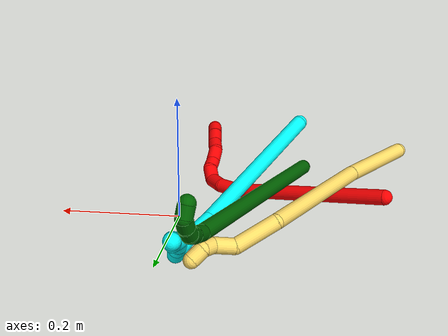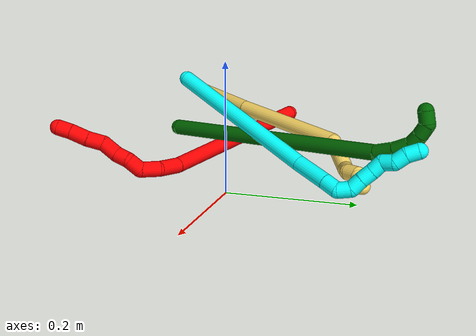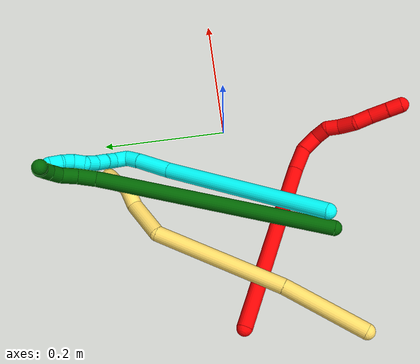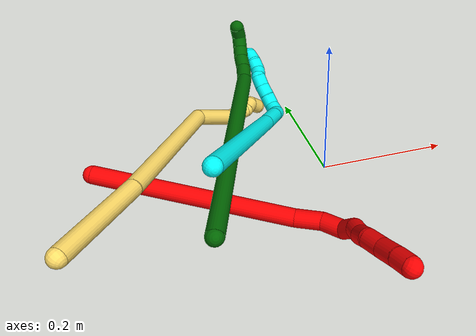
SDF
<sdf version="1.7">
 <world name="default">
  <model name="photoneo_s_sensor">
   <static>1</static>
   <pose>0 0 2 1.57079 1.57079 3.14159</pose>
   <link name="link">
    <inertial><mass>0.1</mass></inertial>
    <sensor name="sensor" type="depth">
     <update_rate>30</update_rate>
     <camera>
      <horizontal_fov>1.22</horizontal_fov>
      <image><width>1920</width><height>1200</height><format>B8G8R8</format></image>
      <clip><near>0.1</near><far>4</far></clip>
      <depth_camera><output>points</output></depth_camera>
     </camera>
     <plugin name="camera_plugin" filename="libgazebo_ros_depth_camera.so">
      <baseline>0.2</baseline>
      <alwaysOn>1</alwaysOn>
      <updateRate>0.0</updateRate>
      <cameraName>camera_ir</cameraName>
      <imageTopicName>/camera/color/image_raw</imageTopicName>
      <cameraInfoTopicName>/camera/color/camera_info</cameraInfoTopicName>
      <depthImageTopicName>/camera/depth/image_raw</depthImageTopicName>
      <depthImageCameraInfoTopicName>/camera/depth/camera_info</depthImageCameraInfoTopicName>
      <pointCloudTopicName>/camera/depth/points</pointCloudTopicName>
      <frameName>fr_optical</frameName>
      <pointCloudCutoff>0.1</pointCloudCutoff>
      <pointCloudCutoffMax>2.0</pointCloudCutoffMax>
      <distortionK1>0</distortionK1>
      <distortionK2>0</distortionK2>
      <distortionK3>0</distortionK3>
      <distortionT1>0</distortionT1>
      <distortionT2>0</distortionT2>
      <CxPrime>0</CxPrime>
      <Cx>0</Cx>
      <Cy>0</Cy>
      <focalLength>0</focalLength>
      <hackBaseline>0</hackBaseline>
     </plugin>
    </sensor>
   </link>
  </model>
  <model name="bin">
   <static>1</static>
   <link name="bottom">
    <collision name="collision-bottom">
     <pose>0 0 -0.01 0 -0 0</pose>
     <geometry><box><size>0.8 0.6 0.02</size></box></geometry>
     <surface>
      <friction><ode><mu>100</mu><mu2>100</mu2></ode></friction>
      <contact><collide_bitmask>65535</collide_bitmask></contact>
     </surface>
    </collision>
   </link>
   <link name="west_wall">
    <collision name="collision-west_wall">
     <pose>-0.41 0 0.1 0 -0 0</pose>
     <geometry><box><size>0.02 0.6 0.2</size></box></geometry>
     <surface>
      <friction><ode><mu>100</mu><mu2>100</mu2></ode></friction>
      <contact><collide_bitmask>65535</collide_bitmask></contact>
     </surface>
    </collision>
   </link>
   <link name="east_wall">
    <collision name="collision-east_wall">
     <pose>0.41 0 0.1 0 -0 0</pose>
     <geometry><box><size>0.02 0.6 0.2</size></box></geometry>
     <surface>
      <friction><ode><mu>100</mu><mu2>100</mu2></ode></friction>
      <contact><collide_bitmask>65535</collide_bitmask></contact>
     </surface>
    </collision>
   </link>
   <link name="south_wall">
    <collision name="collision-south_wall">
     <pose>0 -0.31 0.1 0 -0 0</pose>
     <geometry><box><size>0.8 0.02 0.2</size></box></geometry>
     <surface>
      <friction><ode><mu>100</mu><mu2>100</mu2></ode></friction>
      <contact><collide_bitmask>65535</collide_bitmask></contact>
     </surface>
    </collision>
   </link>
   <link name="north_wall">
    <collision name="collision-north_wall">
     <pose>0 0.31 0.1 0 -0 0</pose>
     <geometry><box><size>0.8 0.02 0.2</size></box></geometry>
     <surface>
      <friction><ode><mu>100</mu><mu2>100</mu2></ode></friction>
      <contact><collide_bitmask>65535</collide_bitmask></contact>
     </surface>
    </collision>
   </link>
  </model>
  <model name="2">
   <static>0</static>
   <link name="2">
    <collision name="collision-cylinder-e_1_1_4">
     <pose>0.037554 0.015673 -0.133207 -3.02447 0.272998 -2.33475</pose>
     <geometry><cylinder><radius>0.0125</radius><length>0.278568</length></cylinder></geometry>
     <surface>
      <friction><ode><mu>1.16</mu><mu2>1.16</mu2><slip1>0</slip1><slip2>0</slip2></ode></friction>
      <contact><ode><kp>1e+06</kp><kd>1</kd><max_vel>0</max_vel><min_depth>0.001</min_depth></ode></contact>
     </surface>
    </collision>
    <visual name="visual-cylinder-e_1_1_4">
     <pose>0.037554 0.015673 -0.133207 -3.02447 0.272998 -2.33475</pose>
     <geometry><cylinder><radius>0.0125</radius><length>0.278568</length></cylinder></geometry>
     <material><ambient>1 0 0 1</ambient></material>
    </visual>
    <collision name="collision-cylinder-e_2_4_5">
     <pose>0.083387 0.032189 -0.283261 -3.09157 0.45632 -2.92694</pose>
     <geometry><cylinder><radius>0.0125</radius><length>0.03758</length></cylinder></geometry>
     <surface>
      <friction><ode><mu>1.16</mu><mu2>1.16</mu2><slip1>0</slip1><slip2>0</slip2></ode></friction>
      <contact><ode><kp>1e+06</kp><kd>1</kd><max_vel>0</max_vel><min_depth>0.001</min_depth></ode></contact>
     </surface>
    </collision>
    <visual name="visual-cylinder-e_2_4_5">
     <pose>0.083387 0.032189 -0.283261 -3.09157 0.45632 -2.92694</pose>
     <geometry><cylinder><radius>0.0125</radius><length>0.03758</length></cylinder></geometry>
     <material><ambient>1 0 0 1</ambient></material>
    </visual>
    <collision name="collision-cylinder-e_3_5_6">
     <pose>0.098514 0.027727 -0.313196 2.7565 0.451449 1.73377</pose>
     <geometry><cylinder><radius>0.0125</radius><length>0.031391</length></cylinder></geometry>
     <surface>
      <friction><ode><mu>1.16</mu><mu2>1.16</mu2><slip1>0</slip1><slip2>0</slip2></ode></friction>
      <contact><ode><kp>1e+06</kp><kd>1</kd><max_vel>0</max_vel><min_depth>0.001</min_depth></ode></contact>
     </surface>
    </collision>
    <visual name="visual-cylinder-e_3_5_6">
     <pose>0.098514 0.027727 -0.313196 2.7565 0.451449 1.73377</pose>
     <geometry><cylinder><radius>0.0125</radius><length>0.031391</length></cylinder></geometry>
     <material><ambient>1 0 0 1</ambient></material>
    </visual>
    <collision name="collision-cylinder-e_4_6_7">
     <pose>0.115811 0.016977 -0.329766 2.13969 1.01684 1.58844</pose>
     <geometry><cylinder><radius>0.0125</radius><length>0.024573</length></cylinder></geometry>
     <surface>
      <friction><ode><mu>1.16</mu><mu2>1.16</mu2><slip1>0</slip1><slip2>0</slip2></ode></friction>
      <contact><ode><kp>1e+06</kp><kd>1</kd><max_vel>0</max_vel><min_depth>0.001</min_depth></ode></contact>
     </surface>
    </collision>
    <visual name="visual-cylinder-e_4_6_7">
     <pose>0.115811 0.016977 -0.329766 2.13969 1.01684 1.58844</pose>
     <geometry><cylinder><radius>0.0125</radius><length>0.024573</length></cylinder></geometry>
     <material><ambient>1 0 0 1</ambient></material>
    </visual>
    <collision name="collision-cylinder-e_5_7_8">
     <pose>0.131283 0.00254 -0.335876 1.85521 0.492217 0.646768</pose>
     <geometry><cylinder><radius>0.0125</radius><length>0.021259</length></cylinder></geometry>
     <surface>
      <friction><ode><mu>1.16</mu><mu2>1.16</mu2><slip1>0</slip1><slip2>0</slip2></ode></friction>
      <contact><ode><kp>1e+06</kp><kd>1</kd><max_vel>0</max_vel><min_depth>0.001</min_depth></ode></contact>
     </surface>
    </collision>
    <visual name="visual-cylinder-e_5_7_8">
     <pose>0.131283 0.00254 -0.335876 1.85521 0.492217 0.646768</pose>
     <geometry><cylinder><radius>0.0125</radius><length>0.021259</length></cylinder></geometry>
     <material><ambient>1 0 0 1</ambient></material>
    </visual>
    <collision name="collision-cylinder-e_6_8_9">
     <pose>0.145633 -0.016846 -0.340169 1.72958 0.724985 0.83706</pose>
     <geometry><cylinder><radius>0.0125</radius><length>0.028128</length></cylinder></geometry>
     <surface>
      <friction><ode><mu>1.16</mu><mu2>1.16</mu2><slip1>0</slip1><slip2>0</slip2></ode></friction>
      <contact><ode><kp>1e+06</kp><kd>1</kd><max_vel>0</max_vel><min_depth>0.001</min_depth></ode></contact>
     </surface>
    </collision>
    <visual name="visual-cylinder-e_6_8_9">
     <pose>0.145633 -0.016846 -0.340169 1.72958 0.724985 0.83706</pose>
     <geometry><cylinder><radius>0.0125</radius><length>0.028128</length></cylinder></geometry>
     <material><ambient>1 0 0 1</ambient></material>
    </visual>
    <collision name="collision-cylinder-e_7_9_10">
     <pose>0.161746 -0.036376 -0.348714 2.21635 0.535578 1.00595</pose>
     <geometry><cylinder><radius>0.0125</radius><length>0.026597</length></cylinder></geometry>
     <surface>
      <friction><ode><mu>1.16</mu><mu2>1.16</mu2><slip1>0</slip1><slip2>0</slip2></ode></friction>
      <contact><ode><kp>1e+06</kp><kd>1</kd><max_vel>0</max_vel><min_depth>0.001</min_depth></ode></contact>
     </surface>
    </collision>
    <visual name="visual-cylinder-e_7_9_10">
     <pose>0.161746 -0.036376 -0.348714 2.21635 0.535578 1.00595</pose>
     <geometry><cylinder><radius>0.0125</radius><length>0.026597</length></cylinder></geometry>
     <material><ambient>1 0 0 1</ambient></material>
    </visual>
    <collision name="collision-cylinder-e_8_10_11">
     <pose>0.176954 -0.055947 -0.361195 2.06333 0.618129 0.980512</pose>
     <geometry><cylinder><radius>0.0125</radius><length>0.029066</length></cylinder></geometry>
     <surface>
      <friction><ode><mu>1.16</mu><mu2>1.16</mu2><slip1>0</slip1><slip2>0</slip2></ode></friction>
      <contact><ode><kp>1e+06</kp><kd>1</kd><max_vel>0</max_vel><min_depth>0.001</min_depth></ode></contact>
     </surface>
    </collision>
    <visual name="visual-cylinder-e_8_10_11">
     <pose>0.176954 -0.055947 -0.361195 2.06333 0.618129 0.980512</pose>
     <geometry><cylinder><radius>0.0125</radius><length>0.029066</length></cylinder></geometry>
     <material><ambient>1 0 0 1</ambient></material>
    </visual>
    <collision name="collision-cylinder-e_9_11_2">
     <pose>0.191239 -0.074646 -0.372064 2.13838 0.539167 0.933456</pose>
     <geometry><cylinder><radius>0.0125</radius><length>0.022838</length></cylinder></geometry>
     <surface>
      <friction><ode><mu>1.16</mu><mu2>1.16</mu2><slip1>0</slip1><slip2>0</slip2></ode></friction>
      <contact><ode><kp>1e+06</kp><kd>1</kd><max_vel>0</max_vel><min_depth>0.001</min_depth></ode></contact>
     </surface>
    </collision>
    <visual name="visual-cylinder-e_9_11_2">
     <pose>0.191239 -0.074646 -0.372064 2.13838 0.539167 0.933456</pose>
     <geometry><cylinder><radius>0.0125</radius><length>0.022838</length></cylinder></geometry>
     <material><ambient>1 0 0 1</ambient></material>
    </visual>
    <collision name="collision-sphere-2">
     <pose>0.197102 -0.082908 -0.377332 0 -0 0</pose>
     <geometry><sphere><radius>0.0125</radius></sphere></geometry>
     <surface>
      <friction><ode><mu>1.16</mu><mu2>1.16</mu2><slip1>0</slip1><slip2>0</slip2></ode></friction>
      <contact><ode><kp>1e+06</kp><kd>1</kd><max_vel>0</max_vel><min_depth>0.001</min_depth></ode></contact>
     </surface>
    </collision>
    <visual name="visual-sphere-2">
     <pose>0.197102 -0.082908 -0.377332 0 -0 0</pose>
     <geometry><sphere><radius>0.0125</radius></sphere></geometry>
     <material><ambient>1 0 0 1</ambient></material>
    </visual>
    <collision name="collision-sphere-11">
     <pose>0.185376 -0.066383 -0.366796 0 -0 0</pose>
     <geometry><sphere><radius>0.0125</radius></sphere></geometry>
     <surface>
      <friction><ode><mu>1.16</mu><mu2>1.16</mu2><slip1>0</slip1><slip2>0</slip2></ode></friction>
      <contact><ode><kp>1e+06</kp><kd>1</kd><max_vel>0</max_vel><min_depth>0.001</min_depth></ode></contact>
     </surface>
    </collision>
    <visual name="visual-sphere-11">
     <pose>0.185376 -0.066383 -0.366796 0 -0 0</pose>
     <geometry><sphere><radius>0.0125</radius></sphere></geometry>
     <material><ambient>1 0 0 1</ambient></material>
    </visual>
    <collision name="collision-sphere-10">
     <pose>0.168532 -0.045511 -0.355595 0 -0 0</pose>
     <geometry><sphere><radius>0.0125</radius></sphere></geometry>
     <surface>
      <friction><ode><mu>1.16</mu><mu2>1.16</mu2><slip1>0</slip1><slip2>0</slip2></ode></friction>
      <contact><ode><kp>1e+06</kp><kd>1</kd><max_vel>0</max_vel><min_depth>0.001</min_depth></ode></contact>
     </surface>
    </collision>
    <visual name="visual-sphere-10">
     <pose>0.168532 -0.045511 -0.355595 0 -0 0</pose>
     <geometry><sphere><radius>0.0125</radius></sphere></geometry>
     <material><ambient>1 0 0 1</ambient></material>
    </visual>
    <collision name="collision-sphere-9">
     <pose>0.154959 -0.027241 -0.341834 0 -0 0</pose>
     <geometry><sphere><radius>0.0125</radius></sphere></geometry>
     <surface>
      <friction><ode><mu>1.16</mu><mu2>1.16</mu2><slip1>0</slip1><slip2>0</slip2></ode></friction>
      <contact><ode><kp>1e+06</kp><kd>1</kd><max_vel>0</max_vel><min_depth>0.001</min_depth></ode></contact>
     </surface>
    </collision>
    <visual name="visual-sphere-9">
     <pose>0.154959 -0.027241 -0.341834 0 -0 0</pose>
     <geometry><sphere><radius>0.0125</radius></sphere></geometry>
     <material><ambient>1 0 0 1</ambient></material>
    </visual>
    <collision name="collision-sphere-4">
     <pose>0.075107 0.031346 -0.266414 0 -0 0</pose>
     <geometry><sphere><radius>0.0125</radius></sphere></geometry>
     <surface>
      <friction><ode><mu>1.16</mu><mu2>1.16</mu2><slip1>0</slip1><slip2>0</slip2></ode></friction>
      <contact><ode><kp>1e+06</kp><kd>1</kd><max_vel>0</max_vel><min_depth>0.001</min_depth></ode></contact>
     </surface>
    </collision>
    <visual name="visual-sphere-4">
     <pose>0.075107 0.031346 -0.266414 0 -0 0</pose>
     <geometry><sphere><radius>0.0125</radius></sphere></geometry>
     <material><ambient>1 0 0 1</ambient></material>
    </visual>
    <collision name="collision-sphere-1">
     <geometry><sphere><radius>0.0125</radius></sphere></geometry>
     <surface>
      <friction><ode><mu>1.16</mu><mu2>1.16</mu2><slip1>0</slip1><slip2>0</slip2></ode></friction>
      <contact><ode><kp>1e+06</kp><kd>1</kd><max_vel>0</max_vel><min_depth>0.001</min_depth></ode></contact>
     </surface>
    </collision>
    <visual name="visual-sphere-1">
     <geometry><sphere><radius>0.0125</radius></sphere></geometry>
     <material><ambient>1 0 0 1</ambient></material>
    </visual>
    <collision name="collision-sphere-8">
     <pose>0.136306 -0.006452 -0.338505 0 -0 0</pose>
     <geometry><sphere><radius>0.0125</radius></sphere></geometry>
     <surface>
      <friction><ode><mu>1.16</mu><mu2>1.16</mu2><slip1>0</slip1><slip2>0</slip2></ode></friction>
      <contact><ode><kp>1e+06</kp><kd>1</kd><max_vel>0</max_vel><min_depth>0.001</min_depth></ode></contact>
     </surface>
    </collision>
    <visual name="visual-sphere-8">
     <pose>0.136306 -0.006452 -0.338505 0 -0 0</pose>
     <geometry><sphere><radius>0.0125</radius></sphere></geometry>
     <material><ambient>1 0 0 1</ambient></material>
    </visual>
    <collision name="collision-sphere-5">
     <pose>0.091667 0.033032 -0.300107 0 -0 0</pose>
     <geometry><sphere><radius>0.0125</radius></sphere></geometry>
     <surface>
      <friction><ode><mu>1.16</mu><mu2>1.16</mu2><slip1>0</slip1><slip2>0</slip2></ode></friction>
      <contact><ode><kp>1e+06</kp><kd>1</kd><max_vel>0</max_vel><min_depth>0.001</min_depth></ode></contact>
     </surface>
    </collision>
    <visual name="visual-sphere-5">
     <pose>0.091667 0.033032 -0.300107 0 -0 0</pose>
     <geometry><sphere><radius>0.0125</radius></sphere></geometry>
     <material><ambient>1 0 0 1</ambient></material>
    </visual>
    <collision name="collision-sphere-6">
     <pose>0.105362 0.022422 -0.326284 0 -0 0</pose>
     <geometry><sphere><radius>0.0125</radius></sphere></geometry>
     <surface>
      <friction><ode><mu>1.16</mu><mu2>1.16</mu2><slip1>0</slip1><slip2>0</slip2></ode></friction>
      <contact><ode><kp>1e+06</kp><kd>1</kd><max_vel>0</max_vel><min_depth>0.001</min_depth></ode></contact>
     </surface>
    </collision>
    <visual name="visual-sphere-6">
     <pose>0.105362 0.022422 -0.326284 0 -0 0</pose>
     <geometry><sphere><radius>0.0125</radius></sphere></geometry>
     <material><ambient>1 0 0 1</ambient></material>
    </visual>
    <collision name="collision-sphere-7">
     <pose>0.12626 0.011531 -0.333248 0 -0 0</pose>
     <geometry><sphere><radius>0.0125</radius></sphere></geometry>
     <surface>
      <friction><ode><mu>1.16</mu><mu2>1.16</mu2><slip1>0</slip1><slip2>0</slip2></ode></friction>
      <contact><ode><kp>1e+06</kp><kd>1</kd><max_vel>0</max_vel><min_depth>0.001</min_depth></ode></contact>
     </surface>
    </collision>
    <visual name="visual-sphere-7">
     <pose>0.12626 0.011531 -0.333248 0 -0 0</pose>
     <geometry><sphere><radius>0.0125</radius></sphere></geometry>
     <material><ambient>1 0 0 1</ambient></material>
    </visual>
    <inertial>
     <pose>0.080467 0.00429 -0.221332 0 -0 0</pose>
     <mass>0.5</mass>
     <inertia>
      <ixx>-0.00244</ixx>
      <ixy>0</ixy>
      <ixz>0</ixz>
      <iyy>4.1e-05</iyy>
      <iyz>0</iyz>
      <izz>-0.000724</izz>
     </inertia>
    </inertial>
   </link>
   <pose>-0.332411 0.011119 0.053521 -0.001069 -1.14436 -0.56583</pose>
  </model>
  <model name="3">
   <static>0</static>
   <link name="3">
    <collision name="collision-cylinder-e_1_1_4">
     <pose>-0.02797 0.072492 0.114014 -0.566341 -0.204136 0.059591</pose>
     <geometry><cylinder><radius>0.0125</radius><length>0.275947</length></cylinder></geometry>
     <surface>
      <friction><ode><mu>1.16</mu><mu2>1.16</mu2><slip1>0</slip1><slip2>0</slip2></ode></friction>
      <contact><ode><kp>1e+06</kp><kd>1</kd><max_vel>0</max_vel><min_depth>0.001</min_depth></ode></contact>
     </surface>
    </collision>
    <visual name="visual-cylinder-e_1_1_4">
     <pose>-0.02797 0.072492 0.114014 -0.566341 -0.204136 0.059591</pose>
     <geometry><cylinder><radius>0.0125</radius><length>0.275947</length></cylinder></geometry>
     <material><ambient>0.003922 1 0.996078 1</ambient></material>
    </visual>
    <collision name="collision-cylinder-e_2_4_5">
     <pose>-0.059976 0.161079 0.251892 -0.593353 -0.139314 0.042651</pose>
     <geometry><cylinder><radius>0.0125</radius><length>0.058131</length></cylinder></geometry>
     <surface>
      <friction><ode><mu>1.16</mu><mu2>1.16</mu2><slip1>0</slip1><slip2>0</slip2></ode></friction>
      <contact><ode><kp>1e+06</kp><kd>1</kd><max_vel>0</max_vel><min_depth>0.001</min_depth></ode></contact>
     </surface>
    </collision>
    <visual name="visual-cylinder-e_2_4_5">
     <pose>-0.059976 0.161079 0.251892 -0.593353 -0.139314 0.042651</pose>
     <geometry><cylinder><radius>0.0125</radius><length>0.058131</length></cylinder></geometry>
     <material><ambient>0.003922 1 0.996078 1</ambient></material>
    </visual>
    <collision name="collision-cylinder-e_3_5_6">
     <pose>-0.066528 0.183416 0.285948 -0.549578 -0.207411 0.058667</pose>
     <geometry><cylinder><radius>0.0125</radius><length>0.024428</length></cylinder></geometry>
     <surface>
      <friction><ode><mu>1.16</mu><mu2>1.16</mu2><slip1>0</slip1><slip2>0</slip2></ode></friction>
      <contact><ode><kp>1e+06</kp><kd>1</kd><max_vel>0</max_vel><min_depth>0.001</min_depth></ode></contact>
     </surface>
    </collision>
    <visual name="visual-cylinder-e_3_5_6">
     <pose>-0.066528 0.183416 0.285948 -0.549578 -0.207411 0.058667</pose>
     <geometry><cylinder><radius>0.0125</radius><length>0.024428</length></cylinder></geometry>
     <material><ambient>0.003922 1 0.996078 1</ambient></material>
    </visual>
    <collision name="collision-cylinder-e_4_6_7">
     <pose>-0.066678 0.188675 0.30647 0.094968 0.224077 0.010693</pose>
     <geometry><cylinder><radius>0.0125</radius><length>0.021284</length></cylinder></geometry>
     <surface>
      <friction><ode><mu>1.16</mu><mu2>1.16</mu2><slip1>0</slip1><slip2>0</slip2></ode></friction>
      <contact><ode><kp>1e+06</kp><kd>1</kd><max_vel>0</max_vel><min_depth>0.001</min_depth></ode></contact>
     </surface>
    </collision>
    <visual name="visual-cylinder-e_4_6_7">
     <pose>-0.066678 0.188675 0.30647 0.094968 0.224077 0.010693</pose>
     <geometry><cylinder><radius>0.0125</radius><length>0.021284</length></cylinder></geometry>
     <material><ambient>0.003922 1 0.996078 1</ambient></material>
    </visual>
    <collision name="collision-cylinder-e_5_7_8">
     <pose>-0.057084 0.184482 0.322995 0.477916 0.803108 0.206155</pose>
     <geometry><cylinder><radius>0.0125</radius><length>0.020095</length></cylinder></geometry>
     <surface>
      <friction><ode><mu>1.16</mu><mu2>1.16</mu2><slip1>0</slip1><slip2>0</slip2></ode></friction>
      <contact><ode><kp>1e+06</kp><kd>1</kd><max_vel>0</max_vel><min_depth>0.001</min_depth></ode></contact>
     </surface>
    </collision>
    <visual name="visual-cylinder-e_5_7_8">
     <pose>-0.057084 0.184482 0.322995 0.477916 0.803108 0.206155</pose>
     <geometry><cylinder><radius>0.0125</radius><length>0.020095</length></cylinder></geometry>
     <material><ambient>0.003922 1 0.996078 1</ambient></material>
    </visual>
    <collision name="collision-cylinder-e_6_8_9">
     <pose>-0.043386 0.178164 0.3362 0.417429 0.700835 0.154518</pose>
     <geometry><cylinder><radius>0.0125</radius><length>0.020064</length></cylinder></geometry>
     <surface>
      <friction><ode><mu>1.16</mu><mu2>1.16</mu2><slip1>0</slip1><slip2>0</slip2></ode></friction>
      <contact><ode><kp>1e+06</kp><kd>1</kd><max_vel>0</max_vel><min_depth>0.001</min_depth></ode></contact>
     </surface>
    </collision>
    <visual name="visual-cylinder-e_6_8_9">
     <pose>-0.043386 0.178164 0.3362 0.417429 0.700835 0.154518</pose>
     <geometry><cylinder><radius>0.0125</radius><length>0.020064</length></cylinder></geometry>
     <material><ambient>0.003922 1 0.996078 1</ambient></material>
    </visual>
    <collision name="collision-cylinder-e_7_9_10">
     <pose>-0.029577 0.172484 0.349519 0.387093 0.822491 0.170542</pose>
     <geometry><cylinder><radius>0.0125</radius><length>0.020029</length></cylinder></geometry>
     <surface>
      <friction><ode><mu>1.16</mu><mu2>1.16</mu2><slip1>0</slip1><slip2>0</slip2></ode></friction>
      <contact><ode><kp>1e+06</kp><kd>1</kd><max_vel>0</max_vel><min_depth>0.001</min_depth></ode></contact>
     </surface>
    </collision>
    <visual name="visual-cylinder-e_7_9_10">
     <pose>-0.029577 0.172484 0.349519 0.387093 0.822491 0.170542</pose>
     <geometry><cylinder><radius>0.0125</radius><length>0.020029</length></cylinder></geometry>
     <material><ambient>0.003922 1 0.996078 1</ambient></material>
    </visual>
    <collision name="collision-cylinder-e_8_10_11">
     <pose>-0.019598 0.17241 0.365148 -0.261928 0.267093 -0.035388</pose>
     <geometry><cylinder><radius>0.0125</radius><length>0.020007</length></cylinder></geometry>
     <surface>
      <friction><ode><mu>1.16</mu><mu2>1.16</mu2><slip1>0</slip1><slip2>0</slip2></ode></friction>
      <contact><ode><kp>1e+06</kp><kd>1</kd><max_vel>0</max_vel><min_depth>0.001</min_depth></ode></contact>
     </surface>
    </collision>
    <visual name="visual-cylinder-e_8_10_11">
     <pose>-0.019598 0.17241 0.365148 -0.261928 0.267093 -0.035388</pose>
     <geometry><cylinder><radius>0.0125</radius><length>0.020007</length></cylinder></geometry>
     <material><ambient>0.003922 1 0.996078 1</ambient></material>
    </visual>
    <collision name="collision-cylinder-e_9_11_12">
     <pose>-0.010621 0.172791 0.381918 0.276864 0.6857 0.09938</pose>
     <geometry><cylinder><radius>0.0125</radius><length>0.020015</length></cylinder></geometry>
     <surface>
      <friction><ode><mu>1.16</mu><mu2>1.16</mu2><slip1>0</slip1><slip2>0</slip2></ode></friction>
      <contact><ode><kp>1e+06</kp><kd>1</kd><max_vel>0</max_vel><min_depth>0.001</min_depth></ode></contact>
     </surface>
    </collision>
    <visual name="visual-cylinder-e_9_11_12">
     <pose>-0.010621 0.172791 0.381918 0.276864 0.6857 0.09938</pose>
     <geometry><cylinder><radius>0.0125</radius><length>0.020015</length></cylinder></geometry>
     <material><ambient>0.003922 1 0.996078 1</ambient></material>
    </visual>
    <collision name="collision-cylinder-e_10_12_2">
     <pose>-0.00047 0.168837 0.398429 0.199983 0.391261 0.039757</pose>
     <geometry><cylinder><radius>0.0125</radius><length>0.02</length></cylinder></geometry>
     <surface>
      <friction><ode><mu>1.16</mu><mu2>1.16</mu2><slip1>0</slip1><slip2>0</slip2></ode></friction>
      <contact><ode><kp>1e+06</kp><kd>1</kd><max_vel>0</max_vel><min_depth>0.001</min_depth></ode></contact>
     </surface>
    </collision>
    <visual name="visual-cylinder-e_10_12_2">
     <pose>-0.00047 0.168837 0.398429 0.199983 0.391261 0.039757</pose>
     <geometry><cylinder><radius>0.0125</radius><length>0.02</length></cylinder></geometry>
     <material><ambient>0.003922 1 0.996078 1</ambient></material>
    </visual>
    <collision name="collision-sphere-2">
     <pose>0.003343 0.167001 0.407489 0 -0 0</pose>
     <geometry><sphere><radius>0.0125</radius></sphere></geometry>
     <surface>
      <friction><ode><mu>1.16</mu><mu2>1.16</mu2><slip1>0</slip1><slip2>0</slip2></ode></friction>
      <contact><ode><kp>1e+06</kp><kd>1</kd><max_vel>0</max_vel><min_depth>0.001</min_depth></ode></contact>
     </surface>
    </collision>
    <visual name="visual-sphere-2">
     <pose>0.003343 0.167001 0.407489 0 -0 0</pose>
     <geometry><sphere><radius>0.0125</radius></sphere></geometry>
     <material><ambient>0.003922 1 0.996078 1</ambient></material>
    </visual>
    <collision name="collision-sphere-12">
     <pose>-0.004284 0.170674 0.389369 0 -0 0</pose>
     <geometry><sphere><radius>0.0125</radius></sphere></geometry>
     <surface>
      <friction><ode><mu>1.16</mu><mu2>1.16</mu2><slip1>0</slip1><slip2>0</slip2></ode></friction>
      <contact><ode><kp>1e+06</kp><kd>1</kd><max_vel>0</max_vel><min_depth>0.001</min_depth></ode></contact>
     </surface>
    </collision>
    <visual name="visual-sphere-12">
     <pose>-0.004284 0.170674 0.389369 0 -0 0</pose>
     <geometry><sphere><radius>0.0125</radius></sphere></geometry>
     <material><ambient>0.003922 1 0.996078 1</ambient></material>
    </visual>
    <collision name="collision-sphere-11">
     <pose>-0.016958 0.174908 0.374467 0 -0 0</pose>
     <geometry><sphere><radius>0.0125</radius></sphere></geometry>
     <surface>
      <friction><ode><mu>1.16</mu><mu2>1.16</mu2><slip1>0</slip1><slip2>0</slip2></ode></friction>
      <contact><ode><kp>1e+06</kp><kd>1</kd><max_vel>0</max_vel><min_depth>0.001</min_depth></ode></contact>
     </surface>
    </collision>
    <visual name="visual-sphere-11">
     <pose>-0.016958 0.174908 0.374467 0 -0 0</pose>
     <geometry><sphere><radius>0.0125</radius></sphere></geometry>
     <material><ambient>0.003922 1 0.996078 1</ambient></material>
    </visual>
    <collision name="collision-sphere-10">
     <pose>-0.022238 0.169911 0.355828 0 -0 0</pose>
     <geometry><sphere><radius>0.0125</radius></sphere></geometry>
     <surface>
      <friction><ode><mu>1.16</mu><mu2>1.16</mu2><slip1>0</slip1><slip2>0</slip2></ode></friction>
      <contact><ode><kp>1e+06</kp><kd>1</kd><max_vel>0</max_vel><min_depth>0.001</min_depth></ode></contact>
     </surface>
    </collision>
    <visual name="visual-sphere-10">
     <pose>-0.022238 0.169911 0.355828 0 -0 0</pose>
     <geometry><sphere><radius>0.0125</radius></sphere></geometry>
     <material><ambient>0.003922 1 0.996078 1</ambient></material>
    </visual>
    <collision name="collision-sphere-9">
     <pose>-0.036916 0.175056 0.343209 0 -0 0</pose>
     <geometry><sphere><radius>0.0125</radius></sphere></geometry>
     <surface>
      <friction><ode><mu>1.16</mu><mu2>1.16</mu2><slip1>0</slip1><slip2>0</slip2></ode></friction>
      <contact><ode><kp>1e+06</kp><kd>1</kd><max_vel>0</max_vel><min_depth>0.001</min_depth></ode></contact>
     </surface>
    </collision>
    <visual name="visual-sphere-9">
     <pose>-0.036916 0.175056 0.343209 0 -0 0</pose>
     <geometry><sphere><radius>0.0125</radius></sphere></geometry>
     <material><ambient>0.003922 1 0.996078 1</ambient></material>
    </visual>
    <collision name="collision-sphere-4">
     <pose>-0.05594 0.144985 0.228029 0 -0 0</pose>
     <geometry><sphere><radius>0.0125</radius></sphere></geometry>
     <surface>
      <friction><ode><mu>1.16</mu><mu2>1.16</mu2><slip1>0</slip1><slip2>0</slip2></ode></friction>
      <contact><ode><kp>1e+06</kp><kd>1</kd><max_vel>0</max_vel><min_depth>0.001</min_depth></ode></contact>
     </surface>
    </collision>
    <visual name="visual-sphere-4">
     <pose>-0.05594 0.144985 0.228029 0 -0 0</pose>
     <geometry><sphere><radius>0.0125</radius></sphere></geometry>
     <material><ambient>0.003922 1 0.996078 1</ambient></material>
    </visual>
    <collision name="collision-sphere-1">
     <geometry><sphere><radius>0.0125</radius></sphere></geometry>
     <surface>
      <friction><ode><mu>1.16</mu><mu2>1.16</mu2><slip1>0</slip1><slip2>0</slip2></ode></friction>
      <contact><ode><kp>1e+06</kp><kd>1</kd><max_vel>0</max_vel><min_depth>0.001</min_depth></ode></contact>
     </surface>
    </collision>
    <visual name="visual-sphere-1">
     <geometry><sphere><radius>0.0125</radius></sphere></geometry>
     <material><ambient>0.003922 1 0.996078 1</ambient></material>
    </visual>
    <collision name="collision-sphere-8">
     <pose>-0.049855 0.181273 0.32919 0 -0 0</pose>
     <geometry><sphere><radius>0.0125</radius></sphere></geometry>
     <surface>
      <friction><ode><mu>1.16</mu><mu2>1.16</mu2><slip1>0</slip1><slip2>0</slip2></ode></friction>
      <contact><ode><kp>1e+06</kp><kd>1</kd><max_vel>0</max_vel><min_depth>0.001</min_depth></ode></contact>
     </surface>
    </collision>
    <visual name="visual-sphere-8">
     <pose>-0.049855 0.181273 0.32919 0 -0 0</pose>
     <geometry><sphere><radius>0.0125</radius></sphere></geometry>
     <material><ambient>0.003922 1 0.996078 1</ambient></material>
    </visual>
    <collision name="collision-sphere-5">
     <pose>-0.064013 0.177173 0.275756 0 -0 0</pose>
     <geometry><sphere><radius>0.0125</radius></sphere></geometry>
     <surface>
      <friction><ode><mu>1.16</mu><mu2>1.16</mu2><slip1>0</slip1><slip2>0</slip2></ode></friction>
      <contact><ode><kp>1e+06</kp><kd>1</kd><max_vel>0</max_vel><min_depth>0.001</min_depth></ode></contact>
     </surface>
    </collision>
    <visual name="visual-sphere-5">
     <pose>-0.064013 0.177173 0.275756 0 -0 0</pose>
     <geometry><sphere><radius>0.0125</radius></sphere></geometry>
     <material><ambient>0.003922 1 0.996078 1</ambient></material>
    </visual>
    <collision name="collision-sphere-6">
     <pose>-0.069043 0.189659 0.296141 0 -0 0</pose>
     <geometry><sphere><radius>0.0125</radius></sphere></geometry>
     <surface>
      <friction><ode><mu>1.16</mu><mu2>1.16</mu2><slip1>0</slip1><slip2>0</slip2></ode></friction>
      <contact><ode><kp>1e+06</kp><kd>1</kd><max_vel>0</max_vel><min_depth>0.001</min_depth></ode></contact>
     </surface>
    </collision>
    <visual name="visual-sphere-6">
     <pose>-0.069043 0.189659 0.296141 0 -0 0</pose>
     <geometry><sphere><radius>0.0125</radius></sphere></geometry>
     <material><ambient>0.003922 1 0.996078 1</ambient></material>
    </visual>
    <collision name="collision-sphere-7">
     <pose>-0.064313 0.187691 0.316799 0 -0 0</pose>
     <geometry><sphere><radius>0.0125</radius></sphere></geometry>
     <surface>
      <friction><ode><mu>1.16</mu><mu2>1.16</mu2><slip1>0</slip1><slip2>0</slip2></ode></friction>
      <contact><ode><kp>1e+06</kp><kd>1</kd><max_vel>0</max_vel><min_depth>0.001</min_depth></ode></contact>
     </surface>
    </collision>
    <visual name="visual-sphere-7">
     <pose>-0.064313 0.187691 0.316799 0 -0 0</pose>
     <geometry><sphere><radius>0.0125</radius></sphere></geometry>
     <material><ambient>0.003922 1 0.996078 1</ambient></material>
    </visual>
    <inertial>
     <pose>-0.034946 0.11777 0.205535 0 -0 0</pose>
     <mass>0.5</mass>
     <inertia>
      <ixx>0.001856</ixx>
      <ixy>0</ixy>
      <ixz>0</ixz>
      <iyy>0.00164</iyy>
      <iyz>0</iyz>
      <izz>-0.000549</izz>
     </inertia>
    </inertial>
   </link>
   <pose>-0.189624 -0.130632 0.133665 -2.0771 -1.39478 0.550471</pose>
  </model>
  <model name="5">
   <static>0</static>
   <link name="5">
    <collision name="collision-cylinder-e_1_1_4">
     <pose>0.063016 0.020664 -0.017986 -2.28701 1.16071 -1.92759</pose>
     <geometry><cylinder><radius>0.0125</radius><length>0.137428</length></cylinder></geometry>
     <surface>
      <friction><ode><mu>1.16</mu><mu2>1.16</mu2><slip1>0</slip1><slip2>0</slip2></ode></friction>
      <contact><ode><kp>1e+06</kp><kd>1</kd><max_vel>0</max_vel><min_depth>0.001</min_depth></ode></contact>
     </surface>
    </collision>
    <visual name="visual-cylinder-e_1_1_4">
     <pose>0.063016 0.020664 -0.017986 -2.28701 1.16071 -1.92759</pose>
     <geometry><cylinder><radius>0.0125</radius><length>0.137428</length></cylinder></geometry>
     <material><ambient>1 0.858824 0.4 1</ambient></material>
    </visual>
    <collision name="collision-cylinder-e_2_4_5">
     <pose>0.222794 0.067492 -0.072652 -2.52199 1.13502 -2.21085</pose>
     <geometry><cylinder><radius>0.0125</radius><length>0.213473</length></cylinder></geometry>
     <surface>
      <friction><ode><mu>1.16</mu><mu2>1.16</mu2><slip1>0</slip1><slip2>0</slip2></ode></friction>
      <contact><ode><kp>1e+06</kp><kd>1</kd><max_vel>0</max_vel><min_depth>0.001</min_depth></ode></contact>
     </surface>
    </collision>
    <visual name="visual-cylinder-e_2_4_5">
     <pose>0.222794 0.067492 -0.072652 -2.52199 1.13502 -2.21085</pose>
     <geometry><cylinder><radius>0.0125</radius><length>0.213473</length></cylinder></geometry>
     <material><ambient>1 0.858824 0.4 1</ambient></material>
    </visual>
    <collision name="collision-cylinder-e_3_5_6">
     <pose>0.354388 0.09783 -0.101844 -0.508572 1.32952 -0.401918</pose>
     <geometry><cylinder><radius>0.0125</radius><length>0.071744</length></cylinder></geometry>
     <surface>
      <friction><ode><mu>1.16</mu><mu2>1.16</mu2><slip1>0</slip1><slip2>0</slip2></ode></friction>
      <contact><ode><kp>1e+06</kp><kd>1</kd><max_vel>0</max_vel><min_depth>0.001</min_depth></ode></contact>
     </surface>
    </collision>
    <visual name="visual-cylinder-e_3_5_6">
     <pose>0.354388 0.09783 -0.101844 -0.508572 1.32952 -0.401918</pose>
     <geometry><cylinder><radius>0.0125</radius><length>0.071744</length></cylinder></geometry>
     <material><ambient>1 0.858824 0.4 1</ambient></material>
    </visual>
    <collision name="collision-cylinder-e_4_6_7">
     <pose>0.401362 0.112545 -0.090119 -1.18848 0.818536 -0.570227</pose>
     <geometry><cylinder><radius>0.0125</radius><length>0.033256</length></cylinder></geometry>
     <surface>
      <friction><ode><mu>1.16</mu><mu2>1.16</mu2><slip1>0</slip1><slip2>0</slip2></ode></friction>
      <contact><ode><kp>1e+06</kp><kd>1</kd><max_vel>0</max_vel><min_depth>0.001</min_depth></ode></contact>
     </surface>
    </collision>
    <visual name="visual-cylinder-e_4_6_7">
     <pose>0.401362 0.112545 -0.090119 -1.18848 0.818536 -0.570227</pose>
     <geometry><cylinder><radius>0.0125</radius><length>0.033256</length></cylinder></geometry>
     <material><ambient>1 0.858824 0.4 1</ambient></material>
    </visual>
    <collision name="collision-cylinder-e_5_7_8">
     <pose>0.422715 0.127088 -0.089547 -2.31257 1.03839 -1.82934</pose>
     <geometry><cylinder><radius>0.0125</radius><length>0.021385</length></cylinder></geometry>
     <surface>
      <friction><ode><mu>1.16</mu><mu2>1.16</mu2><slip1>0</slip1><slip2>0</slip2></ode></friction>
      <contact><ode><kp>1e+06</kp><kd>1</kd><max_vel>0</max_vel><min_depth>0.001</min_depth></ode></contact>
     </surface>
    </collision>
    <visual name="visual-cylinder-e_5_7_8">
     <pose>0.422715 0.127088 -0.089547 -2.31257 1.03839 -1.82934</pose>
     <geometry><cylinder><radius>0.0125</radius><length>0.021385</length></cylinder></geometry>
     <material><ambient>1 0.858824 0.4 1</ambient></material>
    </visual>
    <collision name="collision-cylinder-e_6_8_2">
     <pose>0.442945 0.129701 -0.090831 0.527564 1.32554 0.415531</pose>
     <geometry><cylinder><radius>0.0125</radius><length>0.022715</length></cylinder></geometry>
     <surface>
      <friction><ode><mu>1.16</mu><mu2>1.16</mu2><slip1>0</slip1><slip2>0</slip2></ode></friction>
      <contact><ode><kp>1e+06</kp><kd>1</kd><max_vel>0</max_vel><min_depth>0.001</min_depth></ode></contact>
     </surface>
    </collision>
    <visual name="visual-cylinder-e_6_8_2">
     <pose>0.442945 0.129701 -0.090831 0.527564 1.32554 0.415531</pose>
     <geometry><cylinder><radius>0.0125</radius><length>0.022715</length></cylinder></geometry>
     <material><ambient>1 0.858824 0.4 1</ambient></material>
    </visual>
    <collision name="collision-sphere-2">
     <pose>0.453963 0.128313 -0.088448 0 -0 0</pose>
     <geometry><sphere><radius>0.0125</radius></sphere></geometry>
     <surface>
      <friction><ode><mu>1.16</mu><mu2>1.16</mu2><slip1>0</slip1><slip2>0</slip2></ode></friction>
      <contact><ode><kp>1e+06</kp><kd>1</kd><max_vel>0</max_vel><min_depth>0.001</min_depth></ode></contact>
     </surface>
    </collision>
    <visual name="visual-sphere-2">
     <pose>0.453963 0.128313 -0.088448 0 -0 0</pose>
     <geometry><sphere><radius>0.0125</radius></sphere></geometry>
     <material><ambient>1 0.858824 0.4 1</ambient></material>
    </visual>
    <collision name="collision-sphere-4">
     <pose>0.126033 0.041329 -0.035972 0 -0 0</pose>
     <geometry><sphere><radius>0.0125</radius></sphere></geometry>
     <surface>
      <friction><ode><mu>1.16</mu><mu2>1.16</mu2><slip1>0</slip1><slip2>0</slip2></ode></friction>
      <contact><ode><kp>1e+06</kp><kd>1</kd><max_vel>0</max_vel><min_depth>0.001</min_depth></ode></contact>
     </surface>
    </collision>
    <visual name="visual-sphere-4">
     <pose>0.126033 0.041329 -0.035972 0 -0 0</pose>
     <geometry><sphere><radius>0.0125</radius></sphere></geometry>
     <material><ambient>1 0.858824 0.4 1</ambient></material>
    </visual>
    <collision name="collision-sphere-1">
     <geometry><sphere><radius>0.0125</radius></sphere></geometry>
     <surface>
      <friction><ode><mu>1.16</mu><mu2>1.16</mu2><slip1>0</slip1><slip2>0</slip2></ode></friction>
      <contact><ode><kp>1e+06</kp><kd>1</kd><max_vel>0</max_vel><min_depth>0.001</min_depth></ode></contact>
     </surface>
    </collision>
    <visual name="visual-sphere-1">
     <geometry><sphere><radius>0.0125</radius></sphere></geometry>
     <material><ambient>1 0.858824 0.4 1</ambient></material>
    </visual>
    <collision name="collision-sphere-8">
     <pose>0.431928 0.131089 -0.093214 0 -0 0</pose>
     <geometry><sphere><radius>0.0125</radius></sphere></geometry>
     <surface>
      <friction><ode><mu>1.16</mu><mu2>1.16</mu2><slip1>0</slip1><slip2>0</slip2></ode></friction>
      <contact><ode><kp>1e+06</kp><kd>1</kd><max_vel>0</max_vel><min_depth>0.001</min_depth></ode></contact>
     </surface>
    </collision>
    <visual name="visual-sphere-8">
     <pose>0.431928 0.131089 -0.093214 0 -0 0</pose>
     <geometry><sphere><radius>0.0125</radius></sphere></geometry>
     <material><ambient>1 0.858824 0.4 1</ambient></material>
    </visual>
    <collision name="collision-sphere-5">
     <pose>0.319555 0.093656 -0.109331 0 -0 0</pose>
     <geometry><sphere><radius>0.0125</radius></sphere></geometry>
     <surface>
      <friction><ode><mu>1.16</mu><mu2>1.16</mu2><slip1>0</slip1><slip2>0</slip2></ode></friction>
      <contact><ode><kp>1e+06</kp><kd>1</kd><max_vel>0</max_vel><min_depth>0.001</min_depth></ode></contact>
     </surface>
    </collision>
    <visual name="visual-sphere-5">
     <pose>0.319555 0.093656 -0.109331 0 -0 0</pose>
     <geometry><sphere><radius>0.0125</radius></sphere></geometry>
     <material><ambient>1 0.858824 0.4 1</ambient></material>
    </visual>
    <collision name="collision-sphere-6">
     <pose>0.389221 0.102003 -0.094358 0 -0 0</pose>
     <geometry><sphere><radius>0.0125</radius></sphere></geometry>
     <surface>
      <friction><ode><mu>1.16</mu><mu2>1.16</mu2><slip1>0</slip1><slip2>0</slip2></ode></friction>
      <contact><ode><kp>1e+06</kp><kd>1</kd><max_vel>0</max_vel><min_depth>0.001</min_depth></ode></contact>
     </surface>
    </collision>
    <visual name="visual-sphere-6">
     <pose>0.389221 0.102003 -0.094358 0 -0 0</pose>
     <geometry><sphere><radius>0.0125</radius></sphere></geometry>
     <material><ambient>1 0.858824 0.4 1</ambient></material>
    </visual>
    <collision name="collision-sphere-7">
     <pose>0.413503 0.123086 -0.08588 0 -0 0</pose>
     <geometry><sphere><radius>0.0125</radius></sphere></geometry>
     <surface>
      <friction><ode><mu>1.16</mu><mu2>1.16</mu2><slip1>0</slip1><slip2>0</slip2></ode></friction>
      <contact><ode><kp>1e+06</kp><kd>1</kd><max_vel>0</max_vel><min_depth>0.001</min_depth></ode></contact>
     </surface>
    </collision>
    <visual name="visual-sphere-7">
     <pose>0.413503 0.123086 -0.08588 0 -0 0</pose>
     <geometry><sphere><radius>0.0125</radius></sphere></geometry>
     <material><ambient>1 0.858824 0.4 1</ambient></material>
    </visual>
    <inertial>
     <pose>0.228189 0.067346 -0.064526 0 -0 0</pose>
     <mass>0.5</mass>
     <inertia>
      <ixx>-0.000557</ixx>
      <ixy>0</ixy>
      <ixz>0</ixz>
      <iyy>0.000622</iyy>
      <iyz>0</iyz>
      <izz>-0.001266</izz>
     </inertia>
    </inertial>
   </link>
   <pose>-0.363175 -0.16491 0.079579 1.92492 0.461784 0.784108</pose>
  </model>
  <model name="6">
   <static>0</static>
   <link name="6">
    <collision name="collision-cylinder-e_1_1_4">
     <pose>0.031367 0.11897 0.146518 -0.682004 0.164688 -0.058558</pose>
     <geometry><cylinder><radius>0.0125</radius><length>0.38265</length></cylinder></geometry>
     <surface>
      <friction><ode><mu>1.16</mu><mu2>1.16</mu2><slip1>0</slip1><slip2>0</slip2></ode></friction>
      <contact><ode><kp>1e+06</kp><kd>1</kd><max_vel>0</max_vel><min_depth>0.001</min_depth></ode></contact>
     </surface>
    </collision>
    <visual name="visual-cylinder-e_1_1_4">
     <pose>0.031367 0.11897 0.146518 -0.682004 0.164688 -0.058558</pose>
     <geometry><cylinder><radius>0.0125</radius><length>0.38265</length></cylinder></geometry>
     <material><ambient>0 0.392157 0.003922 1</ambient></material>
    </visual>
    <collision name="collision-cylinder-e_2_4_5">
     <pose>0.068543 0.247845 0.302749 -0.795244 0.396567 -0.168374</pose>
     <geometry><cylinder><radius>0.0125</radius><length>0.03008</length></cylinder></geometry>
     <surface>
      <friction><ode><mu>1.16</mu><mu2>1.16</mu2><slip1>0</slip1><slip2>0</slip2></ode></friction>
      <contact><ode><kp>1e+06</kp><kd>1</kd><max_vel>0</max_vel><min_depth>0.001</min_depth></ode></contact>
     </surface>
    </collision>
    <visual name="visual-cylinder-e_2_4_5">
     <pose>0.068543 0.247845 0.302749 -0.795244 0.396567 -0.168374</pose>
     <geometry><cylinder><radius>0.0125</radius><length>0.03008</length></cylinder></geometry>
     <material><ambient>0 0.392157 0.003922 1</ambient></material>
    </visual>
    <collision name="collision-cylinder-e_3_5_6">
     <pose>0.081647 0.266328 0.319864 -0.858782 0.572079 -0.267721</pose>
     <geometry><cylinder><radius>0.0125</radius><length>0.02695</length></cylinder></geometry>
     <surface>
      <friction><ode><mu>1.16</mu><mu2>1.16</mu2><slip1>0</slip1><slip2>0</slip2></ode></friction>
      <contact><ode><kp>1e+06</kp><kd>1</kd><max_vel>0</max_vel><min_depth>0.001</min_depth></ode></contact>
     </surface>
    </collision>
    <visual name="visual-cylinder-e_3_5_6">
     <pose>0.081647 0.266328 0.319864 -0.858782 0.572079 -0.267721</pose>
     <geometry><cylinder><radius>0.0125</radius><length>0.02695</length></cylinder></geometry>
     <material><ambient>0 0.392157 0.003922 1</ambient></material>
    </visual>
    <collision name="collision-cylinder-e_4_6_7">
     <pose>0.095329 0.282689 0.328557 -1.40642 0.680455 -0.58312</pose>
     <geometry><cylinder><radius>0.0125</radius><length>0.020303</length></cylinder></geometry>
     <surface>
      <friction><ode><mu>1.16</mu><mu2>1.16</mu2><slip1>0</slip1><slip2>0</slip2></ode></friction>
      <contact><ode><kp>1e+06</kp><kd>1</kd><max_vel>0</max_vel><min_depth>0.001</min_depth></ode></contact>
     </surface>
    </collision>
    <visual name="visual-cylinder-e_4_6_7">
     <pose>0.095329 0.282689 0.328557 -1.40642 0.680455 -0.58312</pose>
     <geometry><cylinder><radius>0.0125</radius><length>0.020303</length></cylinder></geometry>
     <material><ambient>0 0.392157 0.003922 1</ambient></material>
    </visual>
    <collision name="collision-cylinder-e_5_7_8">
     <pose>0.108427 0.297873 0.329378 -1.63429 0.735627 -0.779273</pose>
     <geometry><cylinder><radius>0.0125</radius><length>0.020002</length></cylinder></geometry>
     <surface>
      <friction><ode><mu>1.16</mu><mu2>1.16</mu2><slip1>0</slip1><slip2>0</slip2></ode></friction>
      <contact><ode><kp>1e+06</kp><kd>1</kd><max_vel>0</max_vel><min_depth>0.001</min_depth></ode></contact>
     </surface>
    </collision>
    <visual name="visual-cylinder-e_5_7_8">
     <pose>0.108427 0.297873 0.329378 -1.63429 0.735627 -0.779273</pose>
     <geometry><cylinder><radius>0.0125</radius><length>0.020002</length></cylinder></geometry>
     <material><ambient>0 0.392157 0.003922 1</ambient></material>
    </visual>
    <collision name="collision-cylinder-e_6_8_2">
     <pose>0.121414 0.308889 0.322002 -2.65925 0.67782 -1.92319</pose>
     <geometry><cylinder><radius>0.0125</radius><length>0.020015</length></cylinder></geometry>
     <surface>
      <friction><ode><mu>1.16</mu><mu2>1.16</mu2><slip1>0</slip1><slip2>0</slip2></ode></friction>
      <contact><ode><kp>1e+06</kp><kd>1</kd><max_vel>0</max_vel><min_depth>0.001</min_depth></ode></contact>
     </surface>
    </collision>
    <visual name="visual-cylinder-e_6_8_2">
     <pose>0.121414 0.308889 0.322002 -2.65925 0.67782 -1.92319</pose>
     <geometry><cylinder><radius>0.0125</radius><length>0.020015</length></cylinder></geometry>
     <material><ambient>0 0.392157 0.003922 1</ambient></material>
    </visual>
    <collision name="collision-sphere-2">
     <pose>0.127689 0.312505 0.315096 0 -0 0</pose>
     <geometry><sphere><radius>0.0125</radius></sphere></geometry>
     <surface>
      <friction><ode><mu>1.16</mu><mu2>1.16</mu2><slip1>0</slip1><slip2>0</slip2></ode></friction>
      <contact><ode><kp>1e+06</kp><kd>1</kd><max_vel>0</max_vel><min_depth>0.001</min_depth></ode></contact>
     </surface>
    </collision>
    <visual name="visual-sphere-2">
     <pose>0.127689 0.312505 0.315096 0 -0 0</pose>
     <geometry><sphere><radius>0.0125</radius></sphere></geometry>
     <material><ambient>0 0.392157 0.003922 1</ambient></material>
    </visual>
    <collision name="collision-sphere-4">
     <pose>0.062733 0.23794 0.293036 0 -0 0</pose>
     <geometry><sphere><radius>0.0125</radius></sphere></geometry>
     <surface>
      <friction><ode><mu>1.16</mu><mu2>1.16</mu2><slip1>0</slip1><slip2>0</slip2></ode></friction>
      <contact><ode><kp>1e+06</kp><kd>1</kd><max_vel>0</max_vel><min_depth>0.001</min_depth></ode></contact>
     </surface>
    </collision>
    <visual name="visual-sphere-4">
     <pose>0.062733 0.23794 0.293036 0 -0 0</pose>
     <geometry><sphere><radius>0.0125</radius></sphere></geometry>
     <material><ambient>0 0.392157 0.003922 1</ambient></material>
    </visual>
    <collision name="collision-sphere-1">
     <geometry><sphere><radius>0.0125</radius></sphere></geometry>
     <surface>
      <friction><ode><mu>1.16</mu><mu2>1.16</mu2><slip1>0</slip1><slip2>0</slip2></ode></friction>
      <contact><ode><kp>1e+06</kp><kd>1</kd><max_vel>0</max_vel><min_depth>0.001</min_depth></ode></contact>
     </surface>
    </collision>
    <visual name="visual-sphere-1">
     <geometry><sphere><radius>0.0125</radius></sphere></geometry>
     <material><ambient>0 0.392157 0.003922 1</ambient></material>
    </visual>
    <collision name="collision-sphere-8">
     <pose>0.115138 0.305273 0.328907 0 -0 0</pose>
     <geometry><sphere><radius>0.0125</radius></sphere></geometry>
     <surface>
      <friction><ode><mu>1.16</mu><mu2>1.16</mu2><slip1>0</slip1><slip2>0</slip2></ode></friction>
      <contact><ode><kp>1e+06</kp><kd>1</kd><max_vel>0</max_vel><min_depth>0.001</min_depth></ode></contact>
     </surface>
    </collision>
    <visual name="visual-sphere-8">
     <pose>0.115138 0.305273 0.328907 0 -0 0</pose>
     <geometry><sphere><radius>0.0125</radius></sphere></geometry>
     <material><ambient>0 0.392157 0.003922 1</ambient></material>
    </visual>
    <collision name="collision-sphere-5">
     <pose>0.074352 0.257751 0.312461 0 -0 0</pose>
     <geometry><sphere><radius>0.0125</radius></sphere></geometry>
     <surface>
      <friction><ode><mu>1.16</mu><mu2>1.16</mu2><slip1>0</slip1><slip2>0</slip2></ode></friction>
      <contact><ode><kp>1e+06</kp><kd>1</kd><max_vel>0</max_vel><min_depth>0.001</min_depth></ode></contact>
     </surface>
    </collision>
    <visual name="visual-sphere-5">
     <pose>0.074352 0.257751 0.312461 0 -0 0</pose>
     <geometry><sphere><radius>0.0125</radius></sphere></geometry>
     <material><ambient>0 0.392157 0.003922 1</ambient></material>
    </visual>
    <collision name="collision-sphere-6">
     <pose>0.088942 0.274905 0.327266 0 -0 0</pose>
     <geometry><sphere><radius>0.0125</radius></sphere></geometry>
     <surface>
      <friction><ode><mu>1.16</mu><mu2>1.16</mu2><slip1>0</slip1><slip2>0</slip2></ode></friction>
      <contact><ode><kp>1e+06</kp><kd>1</kd><max_vel>0</max_vel><min_depth>0.001</min_depth></ode></contact>
     </surface>
    </collision>
    <visual name="visual-sphere-6">
     <pose>0.088942 0.274905 0.327266 0 -0 0</pose>
     <geometry><sphere><radius>0.0125</radius></sphere></geometry>
     <material><ambient>0 0.392157 0.003922 1</ambient></material>
    </visual>
    <collision name="collision-sphere-7">
     <pose>0.101716 0.290474 0.329848 0 -0 0</pose>
     <geometry><sphere><radius>0.0125</radius></sphere></geometry>
     <surface>
      <friction><ode><mu>1.16</mu><mu2>1.16</mu2><slip1>0</slip1><slip2>0</slip2></ode></friction>
      <contact><ode><kp>1e+06</kp><kd>1</kd><max_vel>0</max_vel><min_depth>0.001</min_depth></ode></contact>
     </surface>
    </collision>
    <visual name="visual-sphere-7">
     <pose>0.101716 0.290474 0.329848 0 -0 0</pose>
     <geometry><sphere><radius>0.0125</radius></sphere></geometry>
     <material><ambient>0 0.392157 0.003922 1</ambient></material>
    </visual>
    <inertial>
     <pose>0.045598 0.156073 0.186992 0 -0 0</pose>
     <mass>0.5</mass>
     <inertia>
      <ixx>0.004355</ixx>
      <ixy>0</ixy>
      <ixz>0</ixz>
      <iyy>0.003415</iyy>
      <iyz>0</iyz>
      <izz>-0.003668</izz>
     </inertia>
    </inertial>
   </link>
   <pose>-0.197486 -0.149876 0.046883 2.32517 -0.630063 2.63454</pose>
  </model>
 </world>
</sdf>
